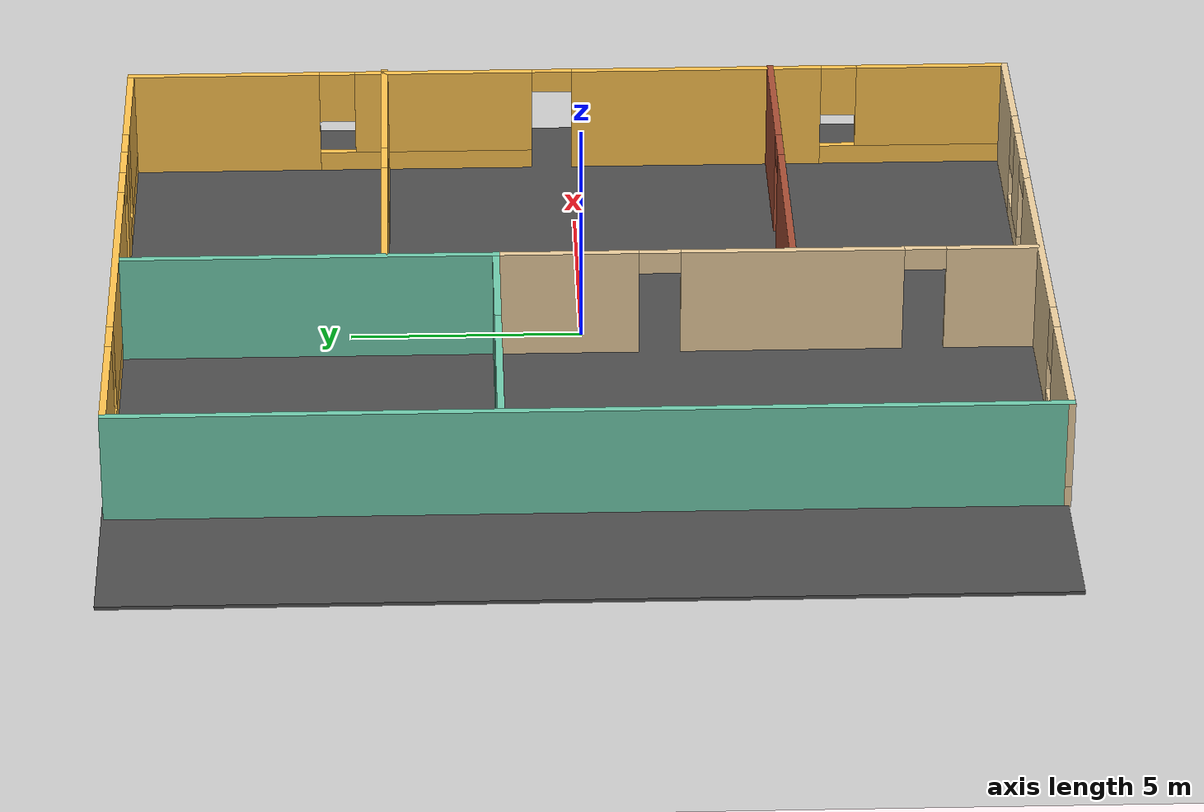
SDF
<sdf version="1.6">
 <world name="default">
  <model name="ground_plane">
   <static>1</static>
   <link name="link">
    <collision name="collision">
     <geometry><plane><normal>0 0 1</normal><size>100 100</size></plane></geometry>
     <surface>
      <contact><collide_bitmask>65535</collide_bitmask></contact>
      <friction><ode><mu>100</mu><mu2>50</mu2></ode></friction>
     </surface>
    </collision>
    <visual name="visual">
     <cast_shadows>0</cast_shadows>
     <geometry><plane><normal>0 0 1</normal><size>100 100</size></plane></geometry>
     <material>
      <script><uri>file://media/materials/scripts/gazebo.material</uri><name>Gazebo/Grey</name></script>
     </material>
    </visual>
   </link>
  </model>
  <model name="TheOffice">
   <pose>0.194983 0.07752 0 0 -0 0</pose>
   <link name="Wall_10">
    <pose>-0.040149 -9.925 0 0 -0 3.14159</pose>
    <visual name="Wall_10_Visual_0">
     <pose>-6.22537 0 1.25 0 -0 0</pose>
     <geometry><box><size>2.54925 0.15 2.5</size></box></geometry>
     <material>
      <script><uri>file://media/materials/scripts/gazebo.material</uri><name>Gazebo/Grey</name></script>
      <ambient>0.921569 0.807843 0.615686 1</ambient>
     </material>
     <meta><layer>0</layer></meta>
    </visual>
    <collision name="Wall_10_Collision_0">
     <geometry><box><size>2.54925 0.15 2.5</size></box></geometry>
     <pose>-6.22537 0 1.25 0 -0 0</pose>
    </collision>
    <visual name="Wall_10_Visual_1">
     <pose>0.736722 0 1.25 0 -0 0</pose>
     <geometry><box><size>5.64147 0.15 2.5</size></box></geometry>
     <material>
      <script><uri>file://media/materials/scripts/gazebo.material</uri><name>Gazebo/Grey</name></script>
      <ambient>0.921569 0.807843 0.615686 1</ambient>
     </material>
     <meta><layer>0</layer></meta>
    </visual>
    <collision name="Wall_10_Collision_1">
     <geometry><box><size>5.64147 0.15 2.5</size></box></geometry>
     <pose>0.736722 0 1.25 0 -0 0</pose>
    </collision>
    <visual name="Wall_10_Visual_2">
     <pose>-3.96738 0 0.25 0 -0 0</pose>
     <geometry><box><size>1.96673 0.15 0.5</size></box></geometry>
     <material>
      <script><uri>file://media/materials/scripts/gazebo.material</uri><name>Gazebo/Grey</name></script>
      <ambient>0.921569 0.807843 0.615686 1</ambient>
     </material>
     <meta><layer>0</layer></meta>
    </visual>
    <collision name="Wall_10_Collision_2">
     <geometry><box><size>1.96673 0.15 0.5</size></box></geometry>
     <pose>-3.96738 0 0.25 0 -0 0</pose>
    </collision>
    <visual name="Wall_10_Visual_3">
     <pose>5.52873 0 0.25 0 -0 0</pose>
     <geometry><box><size>3.94254 0.15 0.5</size></box></geometry>
     <material>
      <script><uri>file://media/materials/scripts/gazebo.material</uri><name>Gazebo/Grey</name></script>
      <ambient>0.921569 0.807843 0.615686 1</ambient>
     </material>
     <meta><layer>0</layer></meta>
    </visual>
    <collision name="Wall_10_Collision_3">
     <geometry><box><size>3.94254 0.15 0.5</size></box></geometry>
     <pose>5.52873 0 0.25 0 -0 0</pose>
    </collision>
    <visual name="Wall_10_Visual_4">
     <pose>-3.56738 0 1.5 0 -0 0</pose>
     <geometry><box><size>1.16673 0.15 2</size></box></geometry>
     <material>
      <script><uri>file://media/materials/scripts/gazebo.material</uri><name>Gazebo/Grey</name></script>
      <ambient>0.921569 0.807843 0.615686 1</ambient>
     </material>
     <meta><layer>0</layer></meta>
    </visual>
    <collision name="Wall_10_Collision_4">
     <geometry><box><size>1.16673 0.15 2</size></box></geometry>
     <pose>-3.56738 0 1.5 0 -0 0</pose>
    </collision>
    <visual name="Wall_10_Visual_5">
     <pose>-3.56738 0 1.5 0 -0 0</pose>
     <geometry><box><size>1.16673 0.15 2</size></box></geometry>
     <material>
      <script><uri>file://media/materials/scripts/gazebo.material</uri><name>Gazebo/Grey</name></script>
      <ambient>0.921569 0.807843 0.615686 1</ambient>
     </material>
     <meta><layer>0</layer></meta>
    </visual>
    <collision name="Wall_10_Collision_5">
     <geometry><box><size>1.16673 0.15 2</size></box></geometry>
     <pose>-3.56738 0 1.5 0 -0 0</pose>
    </collision>
    <visual name="Wall_10_Visual_6">
     <pose>5.92873 0 1.5 0 -0 0</pose>
     <geometry><box><size>3.14254 0.15 2</size></box></geometry>
     <material>
      <script><uri>file://media/materials/scripts/gazebo.material</uri><name>Gazebo/Grey</name></script>
      <ambient>0.921569 0.807843 0.615686 1</ambient>
     </material>
     <meta><layer>0</layer></meta>
    </visual>
    <collision name="Wall_10_Collision_6">
     <geometry><box><size>3.14254 0.15 2</size></box></geometry>
     <pose>5.92873 0 1.5 0 -0 0</pose>
    </collision>
    <visual name="Wall_10_Visual_7">
     <pose>-4.55075 0 1.9 0 -0 0</pose>
     <geometry><box><size>0.8 0.15 1.2</size></box></geometry>
     <material>
      <script><uri>file://media/materials/scripts/gazebo.material</uri><name>Gazebo/Grey</name></script>
      <ambient>0.921569 0.807843 0.615686 1</ambient>
     </material>
     <meta><layer>0</layer></meta>
    </visual>
    <collision name="Wall_10_Collision_7">
     <geometry><box><size>0.8 0.15 1.2</size></box></geometry>
     <pose>-4.55075 0 1.9 0 -0 0</pose>
    </collision>
    <visual name="Wall_10_Visual_8">
     <pose>3.95746 0 1.9 0 -0 0</pose>
     <geometry><box><size>0.8 0.15 1.2</size></box></geometry>
     <material>
      <script><uri>file://media/materials/scripts/gazebo.material</uri><name>Gazebo/Grey</name></script>
      <ambient>0.921569 0.807843 0.615686 1</ambient>
     </material>
     <meta><layer>0</layer></meta>
    </visual>
    <collision name="Wall_10_Collision_8">
     <geometry><box><size>0.8 0.15 1.2</size></box></geometry>
     <pose>3.95746 0 1.9 0 -0 0</pose>
    </collision>
    <visual name="Wall_10_Visual_9">
     <pose>-2.53401 0 2.25 0 -0 0</pose>
     <geometry><box><size>0.9 0.15 0.5</size></box></geometry>
     <material>
      <script><uri>file://media/materials/scripts/gazebo.material</uri><name>Gazebo/Grey</name></script>
      <ambient>0.921569 0.807843 0.615686 1</ambient>
     </material>
     <meta><layer>0</layer></meta>
    </visual>
    <collision name="Wall_10_Collision_9">
     <geometry><box><size>0.9 0.15 0.5</size></box></geometry>
     <pose>-2.53401 0 2.25 0 -0 0</pose>
    </collision>
    <visual name="Wall_10_Visual_10">
     <pose>-2.53401 0 2.25 0 -0 0</pose>
     <geometry><box><size>0.9 0.15 0.5</size></box></geometry>
     <material>
      <script><uri>file://media/materials/scripts/gazebo.material</uri><name>Gazebo/Grey</name></script>
      <ambient>0.921569 0.807843 0.615686 1</ambient>
     </material>
     <meta><layer>0</layer></meta>
    </visual>
    <collision name="Wall_10_Collision_10">
     <geometry><box><size>0.9 0.15 0.5</size></box></geometry>
     <pose>-2.53401 0 2.25 0 -0 0</pose>
    </collision>
   </link>
   <link name="Wall_12">
    <collision name="Wall_12_Collision">
     <geometry><box><size>20 0.15 2.5</size></box></geometry>
     <pose>0 0 1.25 0 -0 0</pose>
    </collision>
    <visual name="Wall_12_Visual">
     <pose>0 0 1.25 0 -0 0</pose>
     <geometry><box><size>20 0.15 2.5</size></box></geometry>
     <material>
      <script><uri>file://media/materials/scripts/gazebo.material</uri><name>Gazebo/Grey</name></script>
      <ambient>0.435294 0.796078 0.67451 1</ambient>
     </material>
     <meta><layer>0</layer></meta>
    </visual>
    <pose>-7.46515 0 0 0 -0 1.5708</pose>
   </link>
   <link name="Wall_14">
    <pose>-0.040149 9.925 0 0 -0 0</pose>
    <visual name="Wall_14_Visual_0">
     <pose>-6.05843 0 1.25 0 -0 0</pose>
     <geometry><box><size>2.88314 0.15 2.5</size></box></geometry>
     <material>
      <script><uri>file://media/materials/scripts/gazebo.material</uri><name>Gazebo/Grey</name></script>
      <ambient>1 0.764706 0.305882 1</ambient>
     </material>
     <meta><layer>0</layer></meta>
    </visual>
    <collision name="Wall_14_Collision_0">
     <geometry><box><size>2.88314 0.15 2.5</size></box></geometry>
     <pose>-6.05843 0 1.25 0 -0 0</pose>
    </collision>
    <visual name="Wall_14_Visual_1">
     <pose>3.37201 0 1.25 0 -0 0</pose>
     <geometry><box><size>0.93492 0.15 2.5</size></box></geometry>
     <material>
      <script><uri>file://media/materials/scripts/gazebo.material</uri><name>Gazebo/Grey</name></script>
      <ambient>1 0.764706 0.305882 1</ambient>
     </material>
     <meta><layer>0</layer></meta>
    </visual>
    <collision name="Wall_14_Collision_1">
     <geometry><box><size>0.93492 0.15 2.5</size></box></geometry>
     <pose>3.37201 0 1.25 0 -0 0</pose>
    </collision>
    <visual name="Wall_14_Visual_2">
     <pose>-1.30615 0 0.25 0 -0 0</pose>
     <geometry><box><size>6.62141 0.15 0.5</size></box></geometry>
     <material>
      <script><uri>file://media/materials/scripts/gazebo.material</uri><name>Gazebo/Grey</name></script>
      <ambient>1 0.764706 0.305882 1</ambient>
     </material>
     <meta><layer>0</layer></meta>
    </visual>
    <collision name="Wall_14_Collision_2">
     <geometry><box><size>6.62141 0.15 0.5</size></box></geometry>
     <pose>-1.30615 0 0.25 0 -0 0</pose>
    </collision>
    <visual name="Wall_14_Visual_3">
     <pose>5.66974 0 0.25 0 -0 0</pose>
     <geometry><box><size>3.66053 0.15 0.5</size></box></geometry>
     <material>
      <script><uri>file://media/materials/scripts/gazebo.material</uri><name>Gazebo/Grey</name></script>
      <ambient>1 0.764706 0.305882 1</ambient>
     </material>
     <meta><layer>0</layer></meta>
    </visual>
    <collision name="Wall_14_Collision_3">
     <geometry><box><size>3.66053 0.15 0.5</size></box></geometry>
     <pose>5.66974 0 0.25 0 -0 0</pose>
    </collision>
    <visual name="Wall_14_Visual_4">
     <pose>-0.906151 0 1.5 0 -0 0</pose>
     <geometry><box><size>5.82141 0.15 2</size></box></geometry>
     <material>
      <script><uri>file://media/materials/scripts/gazebo.material</uri><name>Gazebo/Grey</name></script>
      <ambient>1 0.764706 0.305882 1</ambient>
     </material>
     <meta><layer>0</layer></meta>
    </visual>
    <collision name="Wall_14_Collision_4">
     <geometry><box><size>5.82141 0.15 2</size></box></geometry>
     <pose>-0.906151 0 1.5 0 -0 0</pose>
    </collision>
    <visual name="Wall_14_Visual_5">
     <pose>-0.906151 0 1.5 0 -0 0</pose>
     <geometry><box><size>5.82141 0.15 2</size></box></geometry>
     <material>
      <script><uri>file://media/materials/scripts/gazebo.material</uri><name>Gazebo/Grey</name></script>
      <ambient>1 0.764706 0.305882 1</ambient>
     </material>
     <meta><layer>0</layer></meta>
    </visual>
    <collision name="Wall_14_Collision_5">
     <geometry><box><size>5.82141 0.15 2</size></box></geometry>
     <pose>-0.906151 0 1.5 0 -0 0</pose>
    </collision>
    <visual name="Wall_14_Visual_6">
     <pose>6.06974 0 1.5 0 -0 0</pose>
     <geometry><box><size>2.86053 0.15 2</size></box></geometry>
     <material>
      <script><uri>file://media/materials/scripts/gazebo.material</uri><name>Gazebo/Grey</name></script>
      <ambient>1 0.764706 0.305882 1</ambient>
     </material>
     <meta><layer>0</layer></meta>
    </visual>
    <collision name="Wall_14_Collision_6">
     <geometry><box><size>2.86053 0.15 2</size></box></geometry>
     <pose>6.06974 0 1.5 0 -0 0</pose>
    </collision>
    <visual name="Wall_14_Visual_7">
     <pose>-4.21685 0 1.9 0 -0 0</pose>
     <geometry><box><size>0.8 0.15 1.2</size></box></geometry>
     <material>
      <script><uri>file://media/materials/scripts/gazebo.material</uri><name>Gazebo/Grey</name></script>
      <ambient>1 0.764706 0.305882 1</ambient>
     </material>
     <meta><layer>0</layer></meta>
    </visual>
    <collision name="Wall_14_Collision_7">
     <geometry><box><size>0.8 0.15 1.2</size></box></geometry>
     <pose>-4.21685 0 1.9 0 -0 0</pose>
    </collision>
    <visual name="Wall_14_Visual_8">
     <pose>4.23947 0 1.9 0 -0 0</pose>
     <geometry><box><size>0.8 0.15 1.2</size></box></geometry>
     <material>
      <script><uri>file://media/materials/scripts/gazebo.material</uri><name>Gazebo/Grey</name></script>
      <ambient>1 0.764706 0.305882 1</ambient>
     </material>
     <meta><layer>0</layer></meta>
    </visual>
    <collision name="Wall_14_Collision_8">
     <geometry><box><size>0.8 0.15 1.2</size></box></geometry>
     <pose>4.23947 0 1.9 0 -0 0</pose>
    </collision>
    <visual name="Wall_14_Visual_9">
     <pose>2.45455 0 2.25 0 -0 0</pose>
     <geometry><box><size>0.9 0.15 0.5</size></box></geometry>
     <material>
      <script><uri>file://media/materials/scripts/gazebo.material</uri><name>Gazebo/Grey</name></script>
      <ambient>1 0.764706 0.305882 1</ambient>
     </material>
     <meta><layer>0</layer></meta>
    </visual>
    <collision name="Wall_14_Collision_9">
     <geometry><box><size>0.9 0.15 0.5</size></box></geometry>
     <pose>2.45455 0 2.25 0 -0 0</pose>
    </collision>
    <visual name="Wall_14_Visual_10">
     <pose>2.45455 0 2.25 0 -0 0</pose>
     <geometry><box><size>0.9 0.15 0.5</size></box></geometry>
     <material>
      <script><uri>file://media/materials/scripts/gazebo.material</uri><name>Gazebo/Grey</name></script>
      <ambient>1 0.764706 0.305882 1</ambient>
     </material>
     <meta><layer>0</layer></meta>
    </visual>
    <collision name="Wall_14_Collision_10">
     <geometry><box><size>0.9 0.15 0.5</size></box></geometry>
     <pose>2.45455 0 2.25 0 -0 0</pose>
    </collision>
   </link>
   <link name="Wall_15">
    <pose>7.38485 0 0 0 0 -1.5708</pose>
    <visual name="Wall_15_Visual_0">
     <pose>-7.83118 0 1.25 0 -0 0</pose>
     <geometry><box><size>4.33764 0.15 2.5</size></box></geometry>
     <material>
      <script><uri>file://media/materials/scripts/gazebo.material</uri><name>Gazebo/Grey</name></script>
      <ambient>1 0.764706 0.305882 1</ambient>
     </material>
     <meta><layer>0</layer></meta>
    </visual>
    <collision name="Wall_15_Collision_0">
     <geometry><box><size>4.33764 0.15 2.5</size></box></geometry>
     <pose>-7.83118 0 1.25 0 -0 0</pose>
    </collision>
    <visual name="Wall_15_Visual_1">
     <pose>2.90769 0 1.25 0 -0 0</pose>
     <geometry><box><size>5.68679 0.15 2.5</size></box></geometry>
     <material>
      <script><uri>file://media/materials/scripts/gazebo.material</uri><name>Gazebo/Grey</name></script>
      <ambient>1 0.764706 0.305882 1</ambient>
     </material>
     <meta><layer>0</layer></meta>
    </visual>
    <collision name="Wall_15_Collision_1">
     <geometry><box><size>5.68679 0.15 2.5</size></box></geometry>
     <pose>2.90769 0 1.25 0 -0 0</pose>
    </collision>
    <visual name="Wall_15_Visual_2">
     <pose>-3.24903 0 0.25 0 -0 0</pose>
     <geometry><box><size>4.82665 0.15 0.5</size></box></geometry>
     <material>
      <script><uri>file://media/materials/scripts/gazebo.material</uri><name>Gazebo/Grey</name></script>
      <ambient>1 0.764706 0.305882 1</ambient>
     </material>
     <meta><layer>0</layer></meta>
    </visual>
    <collision name="Wall_15_Collision_2">
     <geometry><box><size>4.82665 0.15 0.5</size></box></geometry>
     <pose>-3.24903 0 0.25 0 -0 0</pose>
    </collision>
    <visual name="Wall_15_Visual_3">
     <pose>7.87554 0 0.25 0 -0 0</pose>
     <geometry><box><size>4.24891 0.15 0.5</size></box></geometry>
     <material>
      <script><uri>file://media/materials/scripts/gazebo.material</uri><name>Gazebo/Grey</name></script>
      <ambient>1 0.764706 0.305882 1</ambient>
     </material>
     <meta><layer>0</layer></meta>
    </visual>
    <collision name="Wall_15_Collision_3">
     <geometry><box><size>4.24891 0.15 0.5</size></box></geometry>
     <pose>7.87554 0 0.25 0 -0 0</pose>
    </collision>
    <visual name="Wall_15_Visual_4">
     <pose>-2.84903 0 1.5 0 -0 0</pose>
     <geometry><box><size>4.02665 0.15 2</size></box></geometry>
     <material>
      <script><uri>file://media/materials/scripts/gazebo.material</uri><name>Gazebo/Grey</name></script>
      <ambient>1 0.764706 0.305882 1</ambient>
     </material>
     <meta><layer>0</layer></meta>
    </visual>
    <collision name="Wall_15_Collision_4">
     <geometry><box><size>4.02665 0.15 2</size></box></geometry>
     <pose>-2.84903 0 1.5 0 -0 0</pose>
    </collision>
    <visual name="Wall_15_Visual_5">
     <pose>-2.84903 0 1.5 0 -0 0</pose>
     <geometry><box><size>4.02665 0.15 2</size></box></geometry>
     <material>
      <script><uri>file://media/materials/scripts/gazebo.material</uri><name>Gazebo/Grey</name></script>
      <ambient>1 0.764706 0.305882 1</ambient>
     </material>
     <meta><layer>0</layer></meta>
    </visual>
    <collision name="Wall_15_Collision_5">
     <geometry><box><size>4.02665 0.15 2</size></box></geometry>
     <pose>-2.84903 0 1.5 0 -0 0</pose>
    </collision>
    <visual name="Wall_15_Visual_6">
     <pose>8.27554 0 1.5 0 -0 0</pose>
     <geometry><box><size>3.44891 0.15 2</size></box></geometry>
     <material>
      <script><uri>file://media/materials/scripts/gazebo.material</uri><name>Gazebo/Grey</name></script>
      <ambient>1 0.764706 0.305882 1</ambient>
     </material>
     <meta><layer>0</layer></meta>
    </visual>
    <collision name="Wall_15_Collision_6">
     <geometry><box><size>3.44891 0.15 2</size></box></geometry>
     <pose>8.27554 0 1.5 0 -0 0</pose>
    </collision>
    <visual name="Wall_15_Visual_7">
     <pose>-5.26236 0 1.9 0 -0 0</pose>
     <geometry><box><size>0.8 0.15 1.2</size></box></geometry>
     <material>
      <script><uri>file://media/materials/scripts/gazebo.material</uri><name>Gazebo/Grey</name></script>
      <ambient>1 0.764706 0.305882 1</ambient>
     </material>
     <meta><layer>0</layer></meta>
    </visual>
    <collision name="Wall_15_Collision_7">
     <geometry><box><size>0.8 0.15 1.2</size></box></geometry>
     <pose>-5.26236 0 1.9 0 -0 0</pose>
    </collision>
    <visual name="Wall_15_Visual_8">
     <pose>6.15109 0 1.9 0 -0 0</pose>
     <geometry><box><size>0.8 0.15 1.2</size></box></geometry>
     <material>
      <script><uri>file://media/materials/scripts/gazebo.material</uri><name>Gazebo/Grey</name></script>
      <ambient>1 0.764706 0.305882 1</ambient>
     </material>
     <meta><layer>0</layer></meta>
    </visual>
    <collision name="Wall_15_Collision_8">
     <geometry><box><size>0.8 0.15 1.2</size></box></geometry>
     <pose>6.15109 0 1.9 0 -0 0</pose>
    </collision>
    <visual name="Wall_15_Visual_9">
     <pose>-0.385703 0 2.25 0 -0 0</pose>
     <geometry><box><size>0.9 0.15 0.5</size></box></geometry>
     <material>
      <script><uri>file://media/materials/scripts/gazebo.material</uri><name>Gazebo/Grey</name></script>
      <ambient>1 0.764706 0.305882 1</ambient>
     </material>
     <meta><layer>0</layer></meta>
    </visual>
    <collision name="Wall_15_Collision_9">
     <geometry><box><size>0.9 0.15 0.5</size></box></geometry>
     <pose>-0.385703 0 2.25 0 -0 0</pose>
    </collision>
    <visual name="Wall_15_Visual_10">
     <pose>-0.385703 0 2.25 0 -0 0</pose>
     <geometry><box><size>0.9 0.15 0.5</size></box></geometry>
     <material>
      <script><uri>file://media/materials/scripts/gazebo.material</uri><name>Gazebo/Grey</name></script>
      <ambient>1 0.764706 0.305882 1</ambient>
     </material>
     <meta><layer>0</layer></meta>
    </visual>
    <collision name="Wall_15_Collision_10">
     <geometry><box><size>0.9 0.15 0.5</size></box></geometry>
     <pose>-0.385703 0 2.25 0 -0 0</pose>
    </collision>
   </link>
   <link name="Wall_18">
    <collision name="Wall_18_Collision">
     <geometry><box><size>8.25 0.15 2.5</size></box></geometry>
     <pose>0 0 1.25 0 -0 0</pose>
    </collision>
    <visual name="Wall_18_Visual">
     <pose>0 0 1.25 0 -0 0</pose>
     <geometry><box><size>8.25 0.15 2.5</size></box></geometry>
     <material>
      <script><uri>file://media/materials/scripts/gazebo.material</uri><name>Gazebo/Grey</name></script>
      <ambient>0.435294 0.796078 0.67451 1</ambient>
     </material>
     <meta><layer>0</layer></meta>
    </visual>
    <pose>-0.988608 5.83138 0 0 0 -1.5708</pose>
   </link>
   <link name="Wall_19">
    <pose>-4.16361 1.78138 0 0 -0 3.14159</pose>
    <visual name="Wall_19_Visual_0">
     <pose>-1.90706 0 1.25 0 -0 0</pose>
     <geometry><box><size>2.68588 0.15 2.5</size></box></geometry>
     <material>
      <script><uri>file://media/materials/scripts/gazebo.material</uri><name>Gazebo/Grey</name></script>
      <ambient>0.435294 0.796078 0.67451 1</ambient>
     </material>
     <meta><layer>0</layer></meta>
    </visual>
    <collision name="Wall_19_Collision_0">
     <geometry><box><size>2.68588 0.15 2.5</size></box></geometry>
     <pose>-1.90706 0 1.25 0 -0 0</pose>
    </collision>
    <visual name="Wall_19_Visual_1">
     <pose>1.79294 0 1.25 0 -0 0</pose>
     <geometry><box><size>2.91412 0.15 2.5</size></box></geometry>
     <material>
      <script><uri>file://media/materials/scripts/gazebo.material</uri><name>Gazebo/Grey</name></script>
      <ambient>0.435294 0.796078 0.67451 1</ambient>
     </material>
     <meta><layer>0</layer></meta>
    </visual>
    <collision name="Wall_19_Collision_1">
     <geometry><box><size>2.91412 0.15 2.5</size></box></geometry>
     <pose>1.79294 0 1.25 0 -0 0</pose>
    </collision>
    <visual name="Wall_19_Visual_2">
     <pose>-0.11412 0 2.25 0 -0 0</pose>
     <geometry><box><size>0.9 0.15 0.5</size></box></geometry>
     <material>
      <script><uri>file://media/materials/scripts/gazebo.material</uri><name>Gazebo/Grey</name></script>
      <ambient>0.435294 0.796078 0.67451 1</ambient>
     </material>
     <meta><layer>0</layer></meta>
    </visual>
    <collision name="Wall_19_Collision_2">
     <geometry><box><size>0.9 0.15 0.5</size></box></geometry>
     <pose>-0.11412 0 2.25 0 -0 0</pose>
    </collision>
   </link>
   <link name="Wall_22">
    <pose>-0.988608 -4.01862 0 0 0 -1.5708</pose>
    <visual name="Wall_22_Visual_0">
     <pose>-4.30202 0 1.25 0 -0 0</pose>
     <geometry><box><size>3.14597 0.15 2.5</size></box></geometry>
     <material>
      <script><uri>file://media/materials/scripts/gazebo.material</uri><name>Gazebo/Grey</name></script>
      <ambient>0.921569 0.807843 0.615686 1</ambient>
     </material>
     <meta><layer>0</layer></meta>
    </visual>
    <collision name="Wall_22_Collision_0">
     <geometry><box><size>3.14597 0.15 2.5</size></box></geometry>
     <pose>-4.30202 0 1.25 0 -0 0</pose>
    </collision>
    <visual name="Wall_22_Visual_1">
     <pose>0.574328 0 1.25 0 -0 0</pose>
     <geometry><box><size>4.80672 0.15 2.5</size></box></geometry>
     <material>
      <script><uri>file://media/materials/scripts/gazebo.material</uri><name>Gazebo/Grey</name></script>
      <ambient>0.921569 0.807843 0.615686 1</ambient>
     </material>
     <meta><layer>0</layer></meta>
    </visual>
    <collision name="Wall_22_Collision_1">
     <geometry><box><size>4.80672 0.15 2.5</size></box></geometry>
     <pose>0.574328 0 1.25 0 -0 0</pose>
    </collision>
    <visual name="Wall_22_Visual_2">
     <pose>4.87634 0 1.25 0 -0 0</pose>
     <geometry><box><size>1.99731 0.15 2.5</size></box></geometry>
     <material>
      <script><uri>file://media/materials/scripts/gazebo.material</uri><name>Gazebo/Grey</name></script>
      <ambient>0.921569 0.807843 0.615686 1</ambient>
     </material>
     <meta><layer>0</layer></meta>
    </visual>
    <collision name="Wall_22_Collision_2">
     <geometry><box><size>1.99731 0.15 2.5</size></box></geometry>
     <pose>4.87634 0 1.25 0 -0 0</pose>
    </collision>
    <visual name="Wall_22_Visual_3">
     <pose>-2.27903 0 2.25 0 -0 0</pose>
     <geometry><box><size>0.9 0.15 0.5</size></box></geometry>
     <material>
      <script><uri>file://media/materials/scripts/gazebo.material</uri><name>Gazebo/Grey</name></script>
      <ambient>0.921569 0.807843 0.615686 1</ambient>
     </material>
     <meta><layer>0</layer></meta>
    </visual>
    <collision name="Wall_22_Collision_3">
     <geometry><box><size>0.9 0.15 0.5</size></box></geometry>
     <pose>-2.27903 0 2.25 0 -0 0</pose>
    </collision>
    <visual name="Wall_22_Visual_4">
     <pose>3.42769 0 2.25 0 -0 0</pose>
     <geometry><box><size>0.9 0.15 0.5</size></box></geometry>
     <material>
      <script><uri>file://media/materials/scripts/gazebo.material</uri><name>Gazebo/Grey</name></script>
      <ambient>0.921569 0.807843 0.615686 1</ambient>
     </material>
     <meta><layer>0</layer></meta>
    </visual>
    <collision name="Wall_22_Collision_4">
     <geometry><box><size>0.9 0.15 0.5</size></box></geometry>
     <pose>3.42769 0 2.25 0 -0 0</pose>
    </collision>
   </link>
   <link name="Wall_24">
    <pose>3.29015 4.17465 0 0 -0 0</pose>
    <visual name="Wall_24_Visual_0">
     <pose>-2.31045 0 1.25 0 -0 0</pose>
     <geometry><box><size>3.8791 0.15 2.5</size></box></geometry>
     <material>
      <script><uri>file://media/materials/scripts/gazebo.material</uri><name>Gazebo/Grey</name></script>
      <ambient>1 0.764706 0.305882 1</ambient>
     </material>
     <meta><layer>0</layer></meta>
    </visual>
    <collision name="Wall_24_Collision_0">
     <geometry><box><size>3.8791 0.15 2.5</size></box></geometry>
     <pose>-2.31045 0 1.25 0 -0 0</pose>
    </collision>
    <visual name="Wall_24_Visual_1">
     <pose>2.38955 0 1.25 0 -0 0</pose>
     <geometry><box><size>3.7209 0.15 2.5</size></box></geometry>
     <material>
      <script><uri>file://media/materials/scripts/gazebo.material</uri><name>Gazebo/Grey</name></script>
      <ambient>1 0.764706 0.305882 1</ambient>
     </material>
     <meta><layer>0</layer></meta>
    </visual>
    <collision name="Wall_24_Collision_1">
     <geometry><box><size>3.7209 0.15 2.5</size></box></geometry>
     <pose>2.38955 0 1.25 0 -0 0</pose>
    </collision>
    <visual name="Wall_24_Visual_2">
     <pose>0.079103 0 2.25 0 -0 0</pose>
     <geometry><box><size>0.9 0.15 0.5</size></box></geometry>
     <material>
      <script><uri>file://media/materials/scripts/gazebo.material</uri><name>Gazebo/Grey</name></script>
      <ambient>1 0.764706 0.305882 1</ambient>
     </material>
     <meta><layer>0</layer></meta>
    </visual>
    <collision name="Wall_24_Collision_2">
     <geometry><box><size>0.9 0.15 0.5</size></box></geometry>
     <pose>0.079103 0 2.25 0 -0 0</pose>
    </collision>
   </link>
   <link name="Wall_26">
    <pose>3.23827 -4.59295 0 0 -0 0</pose>
    <visual name="Wall_26_Visual_0">
     <pose>-2.10293 0 1.25 0 -0 0</pose>
     <geometry><box><size>4.29414 0.15 2.5</size></box></geometry>
     <material>
      <script><uri>file://media/materials/scripts/gazebo.material</uri><name>Gazebo/Bricks</name></script>
      <ambient>1 0.764706 0.305882 1</ambient>
     </material>
     <meta><layer>0</layer></meta>
    </visual>
    <collision name="Wall_26_Collision_0">
     <geometry><box><size>4.29414 0.15 2.5</size></box></geometry>
     <pose>-2.10293 0 1.25 0 -0 0</pose>
    </collision>
    <visual name="Wall_26_Visual_1">
     <pose>2.59707 0 1.25 0 -0 0</pose>
     <geometry><box><size>3.30586 0.15 2.5</size></box></geometry>
     <material>
      <script><uri>file://media/materials/scripts/gazebo.material</uri><name>Gazebo/Bricks</name></script>
      <ambient>1 0.764706 0.305882 1</ambient>
     </material>
     <meta><layer>0</layer></meta>
    </visual>
    <collision name="Wall_26_Collision_1">
     <geometry><box><size>3.30586 0.15 2.5</size></box></geometry>
     <pose>2.59707 0 1.25 0 -0 0</pose>
    </collision>
    <visual name="Wall_26_Visual_2">
     <pose>0.494138 0 2.25 0 -0 0</pose>
     <geometry><box><size>0.9 0.15 0.5</size></box></geometry>
     <material>
      <script><uri>file://media/materials/scripts/gazebo.material</uri><name>Gazebo/Bricks</name></script>
      <ambient>1 0.764706 0.305882 1</ambient>
     </material>
     <meta><layer>0</layer></meta>
    </visual>
    <collision name="Wall_26_Collision_2">
     <geometry><box><size>0.9 0.15 0.5</size></box></geometry>
     <pose>0.494138 0 2.25 0 -0 0</pose>
    </collision>
   </link>
   <static>1</static>
  </model>
  <model name="Environment_0">
   <model name="asphalt_plane">
    <static>1</static>
    <link name="link">
     <collision name="collision"><geometry><box><size>20 20 0.1</size></box></geometry></collision>
     <visual name="visual">
      <cast_shadows>0</cast_shadows>
      <geometry><box><size>20 20 0.1</size></box></geometry>
      <material>
       <script>
        <uri>model://asphalt_plane/materials/scripts</uri>
        <uri>model://asphalt_plane/materials/textures</uri>
        <name>vrc/asphalt</name>
       </script>
      </material>
     </visual>
    </link>
   </model>
   <static>0</static>
   <pose>-0.611145 0.123266 0 0 -0 0</pose>
  </model>
 </world>
</sdf>
